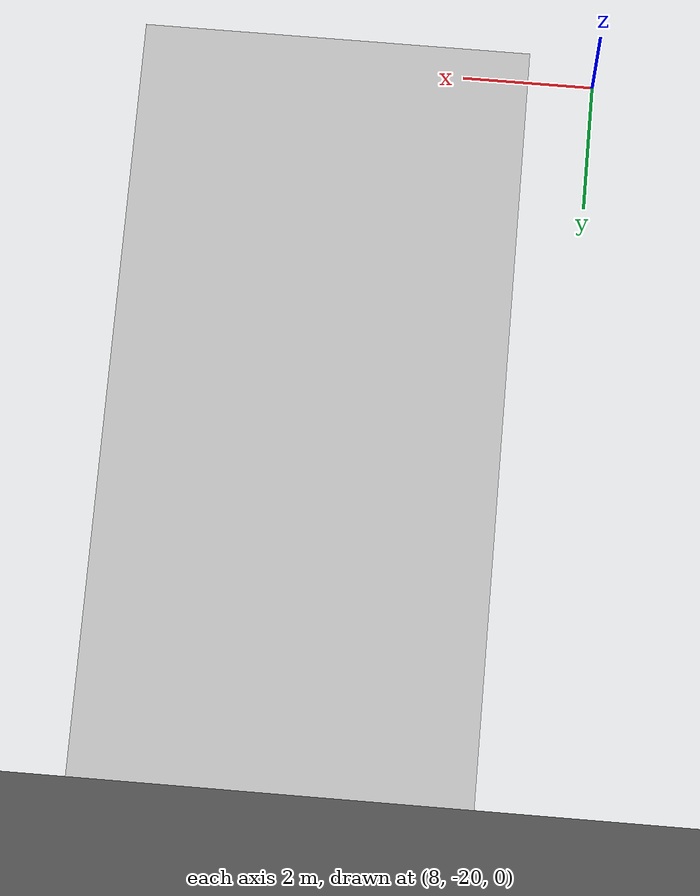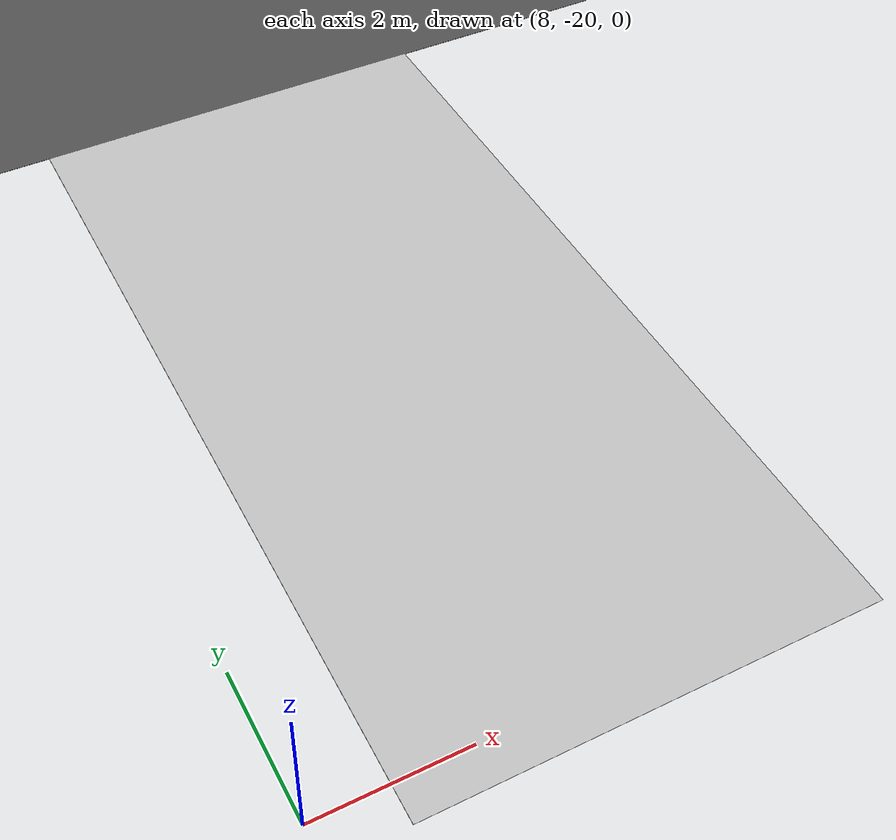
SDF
<?xml version="1.0"?>
<sdf version="1.6">
  <model name="my_mesh">

    <pose>0 0 0  0 0 0</pose>
    <static>true</static>
    <link name="body">
      <collision name="collision">
        <geometry>
          <mesh>
            <uri>model://mesh_path/meshes/path.dae</uri>
          </mesh>
        </geometry>
        <surface>
          <friction>
             <ode>
                <mu>100</mu>
                <mu2>50</mu2>
             </ode>
          </friction>
       </surface>
      </collision>

      <visual name="bot_road1">
        <geometry>
          <plane>
            <size>6 5</size>
          </plane>
        </geometry>
        <material>
          <script>
            <uri>file://media/materials/scripts/gazebo.material</uri>
            <name>Gazebo/Lanes_6 </name>
          </script>
       </material>

      </visual>

            <visual name="main_road">
        <pose>5 -5.5 0 0 0 1.57</pose>
        <geometry>
          <plane>
            <size>6 40</size>
          </plane>
        </geometry>
        <material>
          <script>
            <uri>file://media/materials/scripts/gazebo.material</uri>
            <name>Gazebo/Road</name>
          </script>
       </material>

      </visual>
      <visual name="up_road">
        <pose>12 -14.5 0 0 0 0</pose>
        <geometry>
          <plane>
            <size>6 12</size>
          </plane>
        </geometry>
        <material>
          <script>
            <uri>file://media/materials/scripts/gazebo.material</uri>
            <name>Gazebo/Lanes_6 </name>
          </script>
       </material>
      </visual>
    </link>
  </model>
</sdf>
